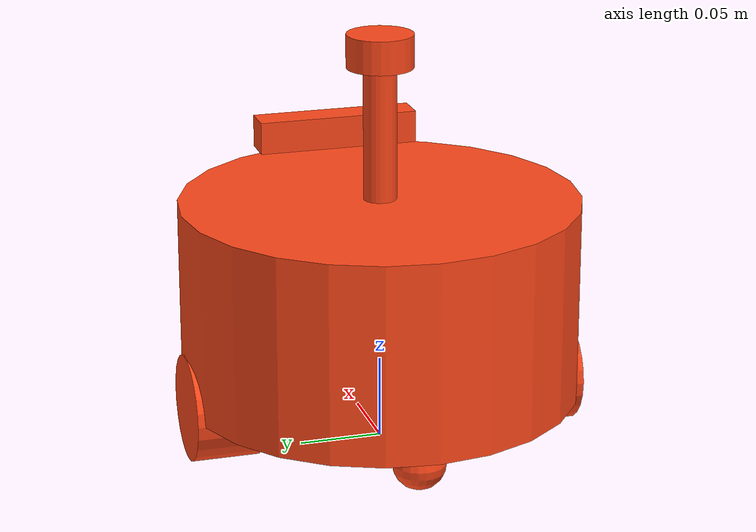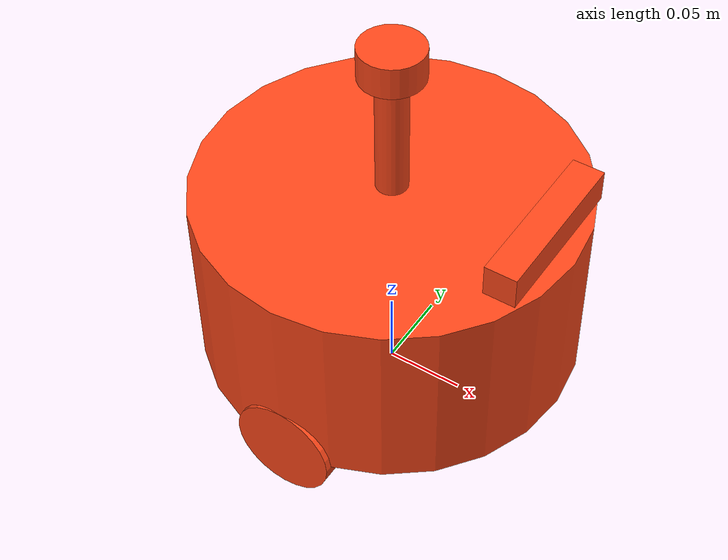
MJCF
<mujoco model="voxelsky_robot">
  <default>
    <default class="robot">
      <default class="motor">
        <joint />
        <motor />
      </default>
      <default class="visual">
        <geom material="visualgeom" contype="0" conaffinity="0" group="2" />
      </default>
      <default class="collision">
        <geom material="collision_material" condim="3" contype="0" conaffinity="1" priority="1" group="1" solref="0.005 1" friction="1 0.01 0.01" />
        <equality solimp="0.99 0.999 1e-05" solref="0.005 1" />
      </default>
    </default>
  </default>

  <compiler angle="radian" />

  <asset>
    <material name="blue" rgba="0.1 0.1 1.0 0.5" />
    <material name="black" rgba="0.0 0.0 0.0 0.8" />
    <material name="default_material" rgba="0.7 0.7 0.7 1" />
    <material name="collision_material" rgba="1.0 0.28 0.1 0.9" />
  </asset>

  <worldbody>
    <body name="base_footprint" pos="0.00000000 0.00000000 0.00100000" quat="1 0 0 0" childclass="robot">
      <freejoint name="floating_base" />
      <body name="base_link" pos="0.0 0.0 0.091" quat="1.0 0.0 0.0 0.0">
        <inertial mass="1.0" diaginertia="0.0037000000000000006 0.0037000000000000006 0.005000000000000001" />
        <geom name="base_link_collision" pos="0 0 0.0" quat="1.0 0.0 0.0 0.0" type="cylinder" size="0.12 0.06" class="collision" />
        <geom name="base_link_visual" pos="0 0 0.0" quat="1.0 0.0 0.0 0.0" material="blue" type="cylinder" size="0.12 0.06" class="visual" />
        <body name="imu_link" pos="0 0 0.02" quat="1.0 0.0 0.0 0.0">
          <inertial mass="0.01" diaginertia="6.666666666666667e-07 6.666666666666667e-07 6.666666666666667e-07" />
          <geom name="imu_link_collision" pos="0 0 00" quat="1.0 0.0 0.0 0.0" type="box" size="0.01 0.01 0.01" class="collision" />
          <geom name="imu_link_visual" pos="0 0 00" quat="1.0 0.0 0.0 0.0" material="black" type="box" size="0.01 0.01 0.01" class="visual" />
        </body>
        <body name="laser_cylinder_link" pos="0 0 0.10" quat="1.0 0.0 0.0 0.0">
          <inertial mass="0.01" diaginertia="8.583333333333335e-06 8.583333333333335e-06 5.000000000000001e-07" />
          <geom name="laser_cylinder_link_collision" pos="0 0 0" quat="1.0 0.0 0.0 0.0" type="cylinder" size="0.01 0.05" class="collision" />
          <geom name="laser_cylinder_link_visual" pos="0 0 0" quat="1.0 0.0 0.0 0.0" material="black" type="cylinder" size="0.01 0.05" class="visual" />
          <body name="laser_link" pos="0 0 0.05" quat="1.0 0.0 0.0 0.0">
            <inertial mass="0.03" diaginertia="4e-06 4e-06 6e-06" />
            <geom name="laser_link_collision" pos="0 0 0" quat="1.0 0.0 0.0 0.0" type="cylinder" size="0.02 0.01" class="collision" />
            <geom name="laser_link_visual" pos="0 0 0" quat="1.0 0.0 0.0 0.0" material="black" type="cylinder" size="0.02 0.01" class="visual" />
          </body>
        </body>
        <body name="camera_link" pos="0.10 0 0.075" quat="1.0 0.0 0.0 0.0">
          <inertial mass="0.01" diaginertia="8.666666666666668e-06 6.666666666666667e-07 8.666666666666668e-06" />
          <geom name="camera_link_collision" pos="0 0 0.0" quat="1.0 0.0 0.0 0.0" type="box" size="0.01 0.05 0.01" class="collision" />
          <geom name="camera_link_visual" pos="0 0 0.0" quat="1.0 0.0 0.0 0.0" material="black" type="box" size="0.01 0.05 0.01" class="visual" />
          <body name="camera_optical_link" pos="0 0 0" quat="0.5000000000000001 -0.5 0.4999999999999999 -0.5" />
        </body>
        <body name="left_wheel_link" pos="0 0.10 -0.06" quat="1.0 0.0 0.0 0.0">
          <joint name="left_wheel_joint" type="hinge" ref="0.0" class="motor" axis="0 1 0" />
          <inertial mass="0.1" diaginertia="3.8933333333333336e-05 3.8933333333333336e-05 5.12e-05" />
          <geom name="left_wheel_link_collision" pos="0 0 0" quat="0.7071090180427968 0.7071045443232221 0.0 0.0" type="cylinder" size="0.032 0.02" class="collision" />
          <geom name="left_wheel_link_visual" pos="0 0 0" quat="0.7071090180427968 0.7071045443232221 0.0 0.0" material="black" type="cylinder" size="0.032 0.02" class="visual" />
        </body>
        <body name="right_wheel_link" pos="0 -0.10 -0.06" quat="1.0 0.0 0.0 0.0">
          <joint name="right_wheel_joint" type="hinge" ref="0.0" class="motor" axis="0 1 0" />
          <inertial mass="0.1" diaginertia="3.8933333333333336e-05 3.8933333333333336e-05 5.12e-05" />
          <geom name="right_wheel_link_collision" pos="0 0 0" quat="0.7071090180427968 0.7071045443232221 0.0 0.0" type="cylinder" size="0.032 0.02" class="collision" />
          <geom name="right_wheel_link_visual" pos="0 0 0" quat="0.7071090180427968 0.7071045443232221 0.0 0.0" material="black" type="cylinder" size="0.032 0.02" class="visual" />
        </body>
        <body name="front_caster_link" pos="0.08 0.0 -0.076" quat="1.0 0.0 0.0 0.0">
          <inertial mass="0.01" diaginertia="1.024e-06 1.024e-06 1.024e-06" />
          <geom name="front_caster_link_collision" pos="0 0 0" quat="1.0 0.0 0.0 0.0" type="sphere" size="0.016" class="collision" />
          <geom name="front_caster_link_visual" pos="0 0 0" quat="1.0 0.0 0.0 0.0" material="black" type="sphere" size="0.016" class="visual" />
        </body>
        <body name="back_caster_link" pos="-0.08 0.0 -0.076" quat="1.0 0.0 0.0 0.0">
          <inertial mass="0.01" diaginertia="1.024e-06 1.024e-06 1.024e-06" />
          <geom name="back_caster_link_collision" pos="0 0 0" quat="1.0 0.0 0.0 0.0" type="sphere" size="0.016" class="collision" />
          <geom name="back_caster_link_visual" pos="0 0 0" quat="1.0 0.0 0.0 0.0" material="black" type="sphere" size="0.016" class="visual" />
        </body>
      </body>
      <site name="base_footprint_site" pos="0 0 0" quat="1 0 0 0" />
      <camera name="front_camera" mode="track" fovy="90.0" quat="4.329780281177467e-17 4.329780281177466e-17 0.7071067811865475 0.7071067811865476" pos="0.0 2.0 0.5" />
      <camera name="side_camera" mode="track" fovy="90.0" quat="-0.5 -0.4999999999999999 0.5 0.5000000000000001" pos="-2.0 0.0 0.5" />
    </body>
  </worldbody>

  <actuator>
    <motor name="left_wheel_joint_ctrl" joint="left_wheel_joint" class="motor" />
    <motor name="right_wheel_joint_ctrl" joint="right_wheel_joint" class="motor" />
  </actuator>

  <contact>
    <exclude body1="base_link" body2="imu_link" />
    <exclude body1="base_link" body2="laser_cylinder_link" />
    <exclude body1="laser_cylinder_link" body2="laser_link" />
    <exclude body1="base_link" body2="camera_link" />
    <exclude body1="base_link" body2="left_wheel_link" />
    <exclude body1="base_link" body2="right_wheel_link" />
    <exclude body1="base_link" body2="front_caster_link" />
    <exclude body1="base_link" body2="back_caster_link" />
  </contact>

  <sensor>
    <framepos name="base_footprint_site_pos" objtype="site" objname="base_footprint_site" />
    <framequat name="base_footprint_site_quat" objtype="site" objname="base_footprint_site" />
    <framelinvel name="base_footprint_site_linvel" objtype="site" objname="base_footprint_site" />
    <frameangvel name="base_footprint_site_angvel" objtype="site" objname="base_footprint_site" />
    <velocimeter name="base_footprint_site_vel" site="base_footprint_site" />
  </sensor>
</mujoco>
